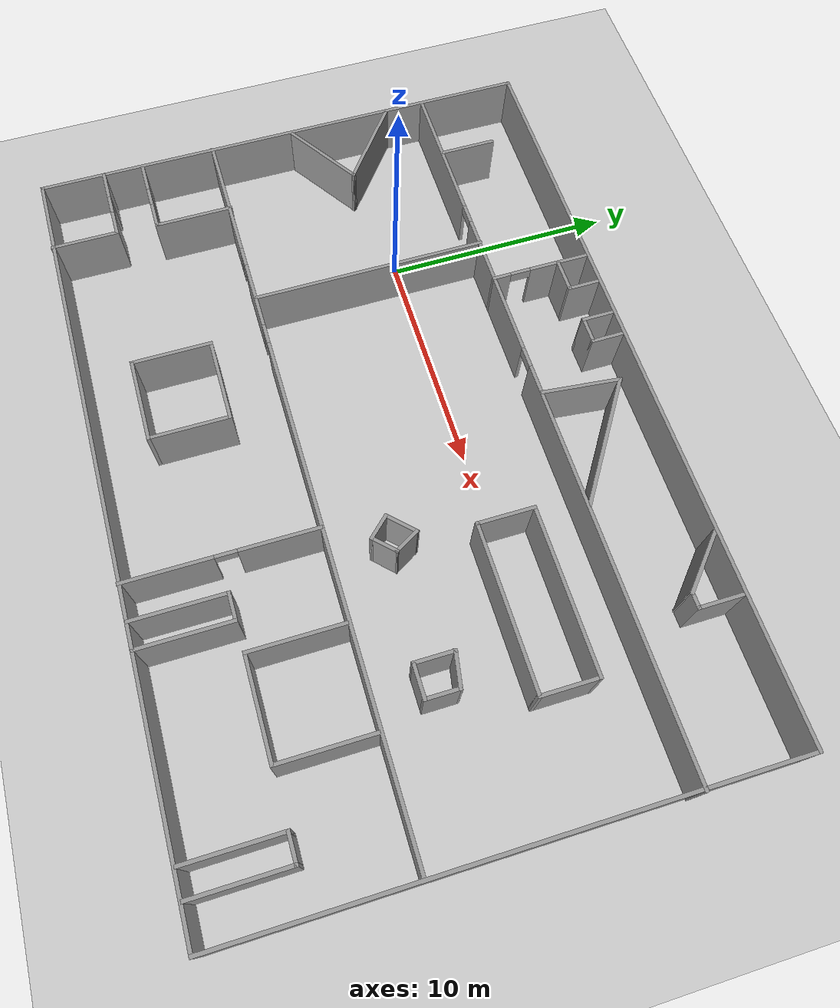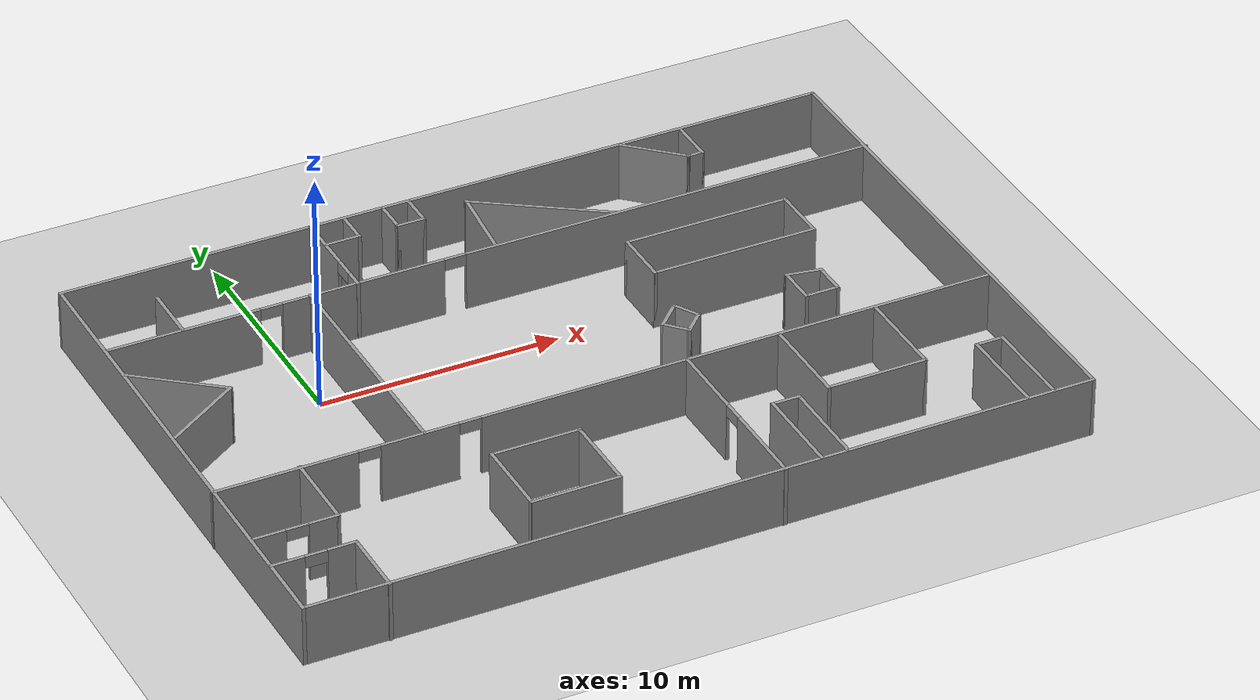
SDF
<sdf version="1.6">
 <world name="default">
  <light name="sun" type="directional">
   <pose>0 0 10 0 -0 0</pose>
   <diffuse>0.8 0.8 0.8 1</diffuse>
   <specular>0.1 0.1 0.1 1</specular>
   <attenuation>
    <range>1000</range>
    <constant>0.9</constant>
    <linear>0.01</linear>
    <quadratic>0.001</quadratic>
   </attenuation>
   <direction>-0.5 0.5 -1</direction>
  </light>
  <model name="ground_plane">
   <static>1</static>
   <link name="link">
    <collision name="collision">
     <geometry><plane><normal>0 0 1</normal><size>100 100</size></plane></geometry>
     <surface><friction><ode><mu>100</mu><mu2>50</mu2></ode></friction></surface>
    </collision>
    <visual name="visual">
     <cast_shadows>0</cast_shadows>
     <geometry><plane><normal>0 0 1</normal><size>100 100</size></plane></geometry>
     <material>
      <script><uri>file://media/materials/scripts/gazebo.material</uri><name>Gazebo/Grey</name></script>
     </material>
    </visual>
   </link>
  </model>
  <gravity>0 0 -9.8</gravity>
  <magnetic_field>6e-06 2.3e-05 -4.2e-05</magnetic_field>
  <atmosphere type="adiabatic"/>
  <physics name="default_physics" default="0" type="ode">
   <max_step_size>0.001</max_step_size>
   <real_time_factor>1</real_time_factor>
   <real_time_update_rate>1000</real_time_update_rate>
  </physics>
  <scene><ambient>0.4 0.4 0.4 1</ambient><background>0.7 0.7 0.7 1</background><shadows>1</shadows></scene>
  <spherical_coordinates>
   <surface_model>EARTH_WGS84</surface_model>
   <latitude_deg>0</latitude_deg>
   <longitude_deg>0</longitude_deg>
   <elevation>0</elevation>
   <heading_deg>0</heading_deg>
  </spherical_coordinates>
  <model name="Mapa_giros">
   <pose>8.95709 -3.38545 0 0 -0 0</pose>
   <link name="Wall_0">
    <collision name="Wall_0_Collision">
     <geometry><box><size>22.5 0.15 2.5</size></box></geometry>
     <pose>0 0 1.25 0 -0 0</pose>
    </collision>
    <visual name="Wall_0_Visual">
     <pose>0 0 1.25 0 -0 0</pose>
     <geometry><box><size>22.5 0.15 2.5</size></box></geometry>
     <material>
      <script><uri>file://media/materials/scripts/gazebo.material</uri><name>Gazebo/Grey</name></script>
      <ambient>1 1 1 1</ambient>
     </material>
    </visual>
    <pose>-16.1903 0.023577 0 0 0 -1.5708</pose>
   </link>
   <link name="Wall_1">
    <collision name="Wall_1_Collision">
     <geometry><box><size>32.5 0.15 2.5</size></box></geometry>
     <pose>0 0 1.25 0 -0 0</pose>
    </collision>
    <visual name="Wall_1_Visual">
     <pose>0 0 1.25 0 -0 0</pose>
     <geometry><box><size>32.5 0.15 2.5</size></box></geometry>
     <material>
      <script><uri>file://media/materials/scripts/gazebo.material</uri><name>Gazebo/Grey</name></script>
      <ambient>1 1 1 1</ambient>
     </material>
    </visual>
    <pose>-0.015296 -11.1514 0 0 -0 0</pose>
   </link>
   <link name="Wall_10">
    <collision name="Wall_10_Collision">
     <geometry><box><size>3.5 0.15 2.5</size></box></geometry>
     <pose>0 0 1.25 0 -0 0</pose>
    </collision>
    <visual name="Wall_10_Visual">
     <pose>0 0 1.25 0 -0 0</pose>
     <geometry><box><size>3.5 0.15 2.5</size></box></geometry>
     <material>
      <script><uri>file://media/materials/scripts/gazebo.material</uri><name>Gazebo/Grey</name></script>
      <ambient>1 1 1 1</ambient>
     </material>
    </visual>
    <pose>-12.7179 -4.89935 0 0 -0 1.5708</pose>
   </link>
   <link name="Wall_12">
    <pose>-14.4847 -8.34858 0 0 -0 0</pose>
    <visual name="Wall_12_Visual_0">
     <pose>-1.06568 0 1.25 0 -0 0</pose>
     <geometry><box><size>1.36864 0.15 2.5</size></box></geometry>
     <material>
      <script><uri>file://media/materials/scripts/gazebo.material</uri><name>Gazebo/Grey</name></script>
      <ambient>1 1 1 1</ambient>
     </material>
    </visual>
    <collision name="Wall_12_Collision_0">
     <geometry><box><size>1.36864 0.15 2.5</size></box></geometry>
     <pose>-1.06568 0 1.25 0 -0 0</pose>
    </collision>
    <visual name="Wall_12_Visual_1">
     <pose>1.13432 0 1.25 0 -0 0</pose>
     <geometry><box><size>1.23136 0.15 2.5</size></box></geometry>
     <material>
      <script><uri>file://media/materials/scripts/gazebo.material</uri><name>Gazebo/Grey</name></script>
      <ambient>1 1 1 1</ambient>
     </material>
    </visual>
    <collision name="Wall_12_Collision_1">
     <geometry><box><size>1.23136 0.15 2.5</size></box></geometry>
     <pose>1.13432 0 1.25 0 -0 0</pose>
    </collision>
    <visual name="Wall_12_Visual_2">
     <pose>0.068642 0 2.25 0 -0 0</pose>
     <geometry><box><size>0.9 0.15 0.5</size></box></geometry>
     <material>
      <script><uri>file://media/materials/scripts/gazebo.material</uri><name>Gazebo/Grey</name></script>
      <ambient>1 1 1 1</ambient>
     </material>
    </visual>
    <collision name="Wall_12_Collision_2">
     <geometry><box><size>0.9 0.15 0.5</size></box></geometry>
     <pose>0.068642 0 2.25 0 -0 0</pose>
    </collision>
   </link>
   <link name="Wall_13">
    <collision name="Wall_13_Collision">
     <geometry><box><size>3 0.15 2.5</size></box></geometry>
     <pose>0 0 1.25 0 -0 0</pose>
    </collision>
    <visual name="Wall_13_Visual">
     <pose>0 0 1.25 0 -0 0</pose>
     <geometry><box><size>3 0.15 2.5</size></box></geometry>
     <material>
      <script><uri>file://media/materials/scripts/gazebo.material</uri><name>Gazebo/Grey</name></script>
      <ambient>1 1 1 1</ambient>
     </material>
    </visual>
    <pose>-12.8097 -9.77358 0 0 0 -1.5708</pose>
   </link>
   <link name="Wall_15">
    <collision name="Wall_15_Collision">
     <geometry><box><size>3.75 0.15 2.5</size></box></geometry>
     <pose>0 0 1.25 0 -0 0</pose>
    </collision>
    <visual name="Wall_15_Visual">
     <pose>0 0 1.25 0 -0 0</pose>
     <geometry><box><size>3.75 0.15 2.5</size></box></geometry>
     <material>
      <script><uri>file://media/materials/scripts/gazebo.material</uri><name>Gazebo/Grey</name></script>
      <ambient>1 1 1 1</ambient>
     </material>
    </visual>
    <pose>-4.26493 -5.59546 0 0 -0 0</pose>
   </link>
   <link name="Wall_16">
    <collision name="Wall_16_Collision">
     <geometry><box><size>3.5 0.15 2.5</size></box></geometry>
     <pose>0 0 1.25 0 -0 0</pose>
    </collision>
    <visual name="Wall_16_Visual">
     <pose>0 0 1.25 0 -0 0</pose>
     <geometry><box><size>3.5 0.15 2.5</size></box></geometry>
     <material>
      <script><uri>file://media/materials/scripts/gazebo.material</uri><name>Gazebo/Grey</name></script>
      <ambient>1 1 1 1</ambient>
     </material>
    </visual>
    <pose>-2.46493 -7.27046 0 0 0 -1.5708</pose>
   </link>
   <link name="Wall_17">
    <collision name="Wall_17_Collision">
     <geometry><box><size>3.75 0.15 2.5</size></box></geometry>
     <pose>0 0 1.25 0 -0 0</pose>
    </collision>
    <visual name="Wall_17_Visual">
     <pose>0 0 1.25 0 -0 0</pose>
     <geometry><box><size>3.75 0.15 2.5</size></box></geometry>
     <material>
      <script><uri>file://media/materials/scripts/gazebo.material</uri><name>Gazebo/Grey</name></script>
      <ambient>1 1 1 1</ambient>
     </material>
    </visual>
    <pose>-4.26493 -8.94546 0 0 -0 3.14159</pose>
   </link>
   <link name="Wall_18">
    <collision name="Wall_18_Collision">
     <geometry><box><size>3.5 0.15 2.5</size></box></geometry>
     <pose>0 0 1.25 0 -0 0</pose>
    </collision>
    <visual name="Wall_18_Visual">
     <pose>0 0 1.25 0 -0 0</pose>
     <geometry><box><size>3.5 0.15 2.5</size></box></geometry>
     <material>
      <script><uri>file://media/materials/scripts/gazebo.material</uri><name>Gazebo/Grey</name></script>
      <ambient>1 1 1 1</ambient>
     </material>
    </visual>
    <pose>-6.06493 -7.27046 0 0 -0 1.5708</pose>
   </link>
   <link name="Wall_2">
    <collision name="Wall_2_Collision">
     <geometry><box><size>22.5 0.15 2.5</size></box></geometry>
     <pose>0 0 1.25 0 -0 0</pose>
    </collision>
    <visual name="Wall_2_Visual">
     <pose>0 0 1.25 0 -0 0</pose>
     <geometry><box><size>22.5 0.15 2.5</size></box></geometry>
     <material>
      <script><uri>file://media/materials/scripts/gazebo.material</uri><name>Gazebo/Grey</name></script>
      <ambient>1 1 1 1</ambient>
     </material>
    </visual>
    <pose>16.1597 0.023577 0 0 -0 1.5708</pose>
   </link>
   <link name="Wall_20">
    <pose>0.045885 6.85477 0 0 -0 0</pose>
    <visual name="Wall_20_Visual_0">
     <pose>-13.0573 0 1.25 0 -0 0</pose>
     <geometry><box><size>6.38544 0.15 2.5</size></box></geometry>
     <material>
      <script><uri>file://media/materials/scripts/gazebo.material</uri><name>Gazebo/Grey</name></script>
      <ambient>1 1 1 1</ambient>
     </material>
    </visual>
    <collision name="Wall_20_Collision_0">
     <geometry><box><size>6.38544 0.15 2.5</size></box></geometry>
     <pose>-13.0573 0 1.25 0 -0 0</pose>
    </collision>
    <visual name="Wall_20_Visual_1">
     <pose>-5.56019 0 1.25 0 -0 0</pose>
     <geometry><box><size>6.80874 0.15 2.5</size></box></geometry>
     <material>
      <script><uri>file://media/materials/scripts/gazebo.material</uri><name>Gazebo/Grey</name></script>
      <ambient>1 1 1 1</ambient>
     </material>
    </visual>
    <collision name="Wall_20_Collision_1">
     <geometry><box><size>6.80874 0.15 2.5</size></box></geometry>
     <pose>-5.56019 0 1.25 0 -0 0</pose>
    </collision>
    <visual name="Wall_20_Visual_2">
     <pose>7.49709 0 1.25 0 -0 0</pose>
     <geometry><box><size>17.5058 0.15 2.5</size></box></geometry>
     <material>
      <script><uri>file://media/materials/scripts/gazebo.material</uri><name>Gazebo/Grey</name></script>
      <ambient>1 1 1 1</ambient>
     </material>
    </visual>
    <collision name="Wall_20_Collision_2">
     <geometry><box><size>17.5058 0.15 2.5</size></box></geometry>
     <pose>7.49709 0 1.25 0 -0 0</pose>
    </collision>
    <visual name="Wall_20_Visual_3">
     <pose>-9.41456 0 2.25 0 -0 0</pose>
     <geometry><box><size>0.9 0.15 0.5</size></box></geometry>
     <material>
      <script><uri>file://media/materials/scripts/gazebo.material</uri><name>Gazebo/Grey</name></script>
      <ambient>1 1 1 1</ambient>
     </material>
    </visual>
    <collision name="Wall_20_Collision_3">
     <geometry><box><size>0.9 0.15 0.5</size></box></geometry>
     <pose>-9.41456 0 2.25 0 -0 0</pose>
    </collision>
    <visual name="Wall_20_Visual_4">
     <pose>-1.70582 0 2.25 0 -0 0</pose>
     <geometry><box><size>0.9 0.15 0.5</size></box></geometry>
     <material>
      <script><uri>file://media/materials/scripts/gazebo.material</uri><name>Gazebo/Grey</name></script>
      <ambient>1 1 1 1</ambient>
     </material>
    </visual>
    <collision name="Wall_20_Collision_4">
     <geometry><box><size>0.9 0.15 0.5</size></box></geometry>
     <pose>-1.70582 0 2.25 0 -0 0</pose>
    </collision>
   </link>
   <link name="Wall_22">
    <collision name="Wall_22_Collision">
     <geometry><box><size>4 0.15 2.5</size></box></geometry>
     <pose>0 0 1.25 0 -0 0</pose>
    </collision>
    <visual name="Wall_22_Visual">
     <pose>0 0 1.25 0 -0 0</pose>
     <geometry><box><size>4 0.15 2.5</size></box></geometry>
     <material>
      <script><uri>file://media/materials/scripts/gazebo.material</uri><name>Gazebo/Grey</name></script>
      <ambient>1 1 1 1</ambient>
     </material>
    </visual>
    <pose>4.70283 -9.20729 0 0 -0 1.5708</pose>
   </link>
   <link name="Wall_23">
    <collision name="Wall_23_Collision">
     <geometry><box><size>1.25 0.15 2.5</size></box></geometry>
     <pose>0 0 1.25 0 -0 0</pose>
    </collision>
    <visual name="Wall_23_Visual">
     <pose>0 0 1.25 0 -0 0</pose>
     <geometry><box><size>1.25 0.15 2.5</size></box></geometry>
     <material>
      <script><uri>file://media/materials/scripts/gazebo.material</uri><name>Gazebo/Grey</name></script>
      <ambient>1 1 1 1</ambient>
     </material>
    </visual>
    <pose>5.25283 -7.28229 0 0 -0 0</pose>
   </link>
   <link name="Wall_24">
    <collision name="Wall_24_Collision">
     <geometry><box><size>4 0.15 2.5</size></box></geometry>
     <pose>0 0 1.25 0 -0 0</pose>
    </collision>
    <visual name="Wall_24_Visual">
     <pose>0 0 1.25 0 -0 0</pose>
     <geometry><box><size>4 0.15 2.5</size></box></geometry>
     <material>
      <script><uri>file://media/materials/scripts/gazebo.material</uri><name>Gazebo/Grey</name></script>
      <ambient>1 1 1 1</ambient>
     </material>
    </visual>
    <pose>5.80283 -9.20729 0 0 0 -1.5708</pose>
   </link>
   <link name="Wall_26">
    <collision name="Wall_26_Collision">
     <geometry><box><size>4 0.15 2.5</size></box></geometry>
     <pose>0 0 1.25 0 -0 0</pose>
    </collision>
    <visual name="Wall_26_Visual">
     <pose>0 0 1.25 0 -0 0</pose>
     <geometry><box><size>4 0.15 2.5</size></box></geometry>
     <material>
      <script><uri>file://media/materials/scripts/gazebo.material</uri><name>Gazebo/Grey</name></script>
      <ambient>1 1 1 1</ambient>
     </material>
    </visual>
    <pose>7.05828 -5.31796 0 0 0 -1.5708</pose>
   </link>
   <link name="Wall_27">
    <collision name="Wall_27_Collision">
     <geometry><box><size>4.25 0.15 2.5</size></box></geometry>
     <pose>0 0 1.25 0 -0 0</pose>
    </collision>
    <visual name="Wall_27_Visual">
     <pose>0 0 1.25 0 -0 0</pose>
     <geometry><box><size>4.25 0.15 2.5</size></box></geometry>
     <material>
      <script><uri>file://media/materials/scripts/gazebo.material</uri><name>Gazebo/Grey</name></script>
      <ambient>1 1 1 1</ambient>
     </material>
    </visual>
    <pose>9.10828 -7.24296 0 0 -0 0</pose>
   </link>
   <link name="Wall_28">
    <collision name="Wall_28_Collision">
     <geometry><box><size>4 0.15 2.5</size></box></geometry>
     <pose>0 0 1.25 0 -0 0</pose>
    </collision>
    <visual name="Wall_28_Visual">
     <pose>0 0 1.25 0 -0 0</pose>
     <geometry><box><size>4 0.15 2.5</size></box></geometry>
     <material>
      <script><uri>file://media/materials/scripts/gazebo.material</uri><name>Gazebo/Grey</name></script>
      <ambient>1 1 1 1</ambient>
     </material>
    </visual>
    <pose>11.1583 -5.31796 0 0 -0 1.5708</pose>
   </link>
   <link name="Wall_3">
    <collision name="Wall_3_Collision">
     <geometry><box><size>32.5 0.15 2.5</size></box></geometry>
     <pose>0 0 1.25 0 -0 0</pose>
    </collision>
    <visual name="Wall_3_Visual">
     <pose>0 0 1.25 0 -0 0</pose>
     <geometry><box><size>32.5 0.15 2.5</size></box></geometry>
     <material>
      <script><uri>file://media/materials/scripts/gazebo.material</uri><name>Gazebo/Grey</name></script>
      <ambient>1 1 1 1</ambient>
     </material>
    </visual>
    <pose>-0.015296 11.1986 0 0 -0 3.14159</pose>
   </link>
   <link name="Wall_30">
    <collision name="Wall_30_Collision">
     <geometry><box><size>4 0.15 2.5</size></box></geometry>
     <pose>0 0 1.25 0 -0 0</pose>
    </collision>
    <visual name="Wall_30_Visual">
     <pose>0 0 1.25 0 -0 0</pose>
     <geometry><box><size>4 0.15 2.5</size></box></geometry>
     <material>
      <script><uri>file://media/materials/scripts/gazebo.material</uri><name>Gazebo/Grey</name></script>
      <ambient>1 1 1 1</ambient>
     </material>
    </visual>
    <pose>13.3905 -9.14611 0 0 -0 1.5708</pose>
   </link>
   <link name="Wall_31">
    <collision name="Wall_31_Collision">
     <geometry><box><size>1.25 0.15 2.5</size></box></geometry>
     <pose>0 0 1.25 0 -0 0</pose>
    </collision>
    <visual name="Wall_31_Visual">
     <pose>0 0 1.25 0 -0 0</pose>
     <geometry><box><size>1.25 0.15 2.5</size></box></geometry>
     <material>
      <script><uri>file://media/materials/scripts/gazebo.material</uri><name>Gazebo/Grey</name></script>
      <ambient>1 1 1 1</ambient>
     </material>
    </visual>
    <pose>13.9405 -7.22111 0 0 -0 0</pose>
   </link>
   <link name="Wall_32">
    <collision name="Wall_32_Collision">
     <geometry><box><size>4 0.15 2.5</size></box></geometry>
     <pose>0 0 1.25 0 -0 0</pose>
    </collision>
    <visual name="Wall_32_Visual">
     <pose>0 0 1.25 0 -0 0</pose>
     <geometry><box><size>4 0.15 2.5</size></box></geometry>
     <material>
      <script><uri>file://media/materials/scripts/gazebo.material</uri><name>Gazebo/Grey</name></script>
      <ambient>1 1 1 1</ambient>
     </material>
    </visual>
    <pose>14.4905 -9.14611 0 0 0 -1.5708</pose>
   </link>
   <link name="Wall_34">
    <collision name="Wall_34_Collision">
     <geometry><box><size>10.25 0.15 2.5</size></box></geometry>
     <pose>0 0 1.25 0 -0 0</pose>
    </collision>
    <visual name="Wall_34_Visual">
     <pose>0 0 1.25 0 -0 0</pose>
     <geometry><box><size>10.25 0.15 2.5</size></box></geometry>
     <material>
      <script><uri>file://media/materials/scripts/gazebo.material</uri><name>Gazebo/Grey</name></script>
      <ambient>1 1 1 1</ambient>
     </material>
    </visual>
    <pose>-7.7168 1.83536 0 0 0 -1.5708</pose>
   </link>
   <link name="Wall_36">
    <collision name="Wall_36_Collision">
     <geometry><box><size>3.88314 0.15 2.5</size></box></geometry>
     <pose>0 0 1.25 0 -0 0</pose>
    </collision>
    <visual name="Wall_36_Visual">
     <pose>0 0 1.25 0 -0 0</pose>
     <geometry><box><size>3.88314 0.15 2.5</size></box></geometry>
     <material>
      <script><uri>file://media/materials/scripts/gazebo.material</uri><name>Gazebo/Grey</name></script>
      <ambient>1 1 1 1</ambient>
     </material>
    </visual>
    <pose>-14.5078 1.54736 0 0 -0 0.581185</pose>
   </link>
   <link name="Wall_37">
    <collision name="Wall_37_Collision">
     <geometry><box><size>4.15837 0.15 2.5</size></box></geometry>
     <pose>0 0 1.25 0 -0 0</pose>
    </collision>
    <visual name="Wall_37_Visual">
     <pose>0 0 1.25 0 -0 0</pose>
     <geometry><box><size>4.15837 0.15 2.5</size></box></geometry>
     <material>
      <script><uri>file://media/materials/scripts/gazebo.material</uri><name>Gazebo/Grey</name></script>
      <ambient>1 1 1 1</ambient>
     </material>
    </visual>
    <pose>-14.5231 3.81104 0 0 -0 2.47519</pose>
   </link>
   <link name="Wall_39">
    <pose>-5.75903 9.02358 0 0 0 -1.5708</pose>
    <visual name="Wall_39_Visual_0">
     <pose>-0.862103 0 1.25 0 -0 0</pose>
     <geometry><box><size>2.77579 0.15 2.5</size></box></geometry>
     <material>
      <script><uri>file://media/materials/scripts/gazebo.material</uri><name>Gazebo/Grey</name></script>
      <ambient>1 1 1 1</ambient>
     </material>
    </visual>
    <collision name="Wall_39_Collision_0">
     <geometry><box><size>2.77579 0.15 2.5</size></box></geometry>
     <pose>-0.862103 0 1.25 0 -0 0</pose>
    </collision>
    <visual name="Wall_39_Visual_1">
     <pose>1.8379 0 1.25 0 -0 0</pose>
     <geometry><box><size>0.824206 0.15 2.5</size></box></geometry>
     <material>
      <script><uri>file://media/materials/scripts/gazebo.material</uri><name>Gazebo/Grey</name></script>
      <ambient>1 1 1 1</ambient>
     </material>
    </visual>
    <collision name="Wall_39_Collision_1">
     <geometry><box><size>0.824206 0.15 2.5</size></box></geometry>
     <pose>1.8379 0 1.25 0 -0 0</pose>
    </collision>
    <visual name="Wall_39_Visual_2">
     <pose>0.975794 0 2.25 0 -0 0</pose>
     <geometry><box><size>0.9 0.15 0.5</size></box></geometry>
     <material>
      <script><uri>file://media/materials/scripts/gazebo.material</uri><name>Gazebo/Grey</name></script>
      <ambient>1 1 1 1</ambient>
     </material>
    </visual>
    <collision name="Wall_39_Collision_2">
     <geometry><box><size>0.9 0.15 0.5</size></box></geometry>
     <pose>0.975794 0 2.25 0 -0 0</pose>
    </collision>
   </link>
   <link name="Wall_41">
    <collision name="Wall_41_Collision">
     <geometry><box><size>1.5 0.15 2.5</size></box></geometry>
     <pose>0 0 1.25 0 -0 0</pose>
    </collision>
    <visual name="Wall_41_Visual">
     <pose>0 0 1.25 0 -0 0</pose>
     <geometry><box><size>1.5 0.15 2.5</size></box></geometry>
     <material>
      <script><uri>file://media/materials/scripts/gazebo.material</uri><name>Gazebo/Grey</name></script>
      <ambient>1 1 1 1</ambient>
     </material>
    </visual>
    <pose>-5.02285 9.79143 0 0 -0 0</pose>
   </link>
   <link name="Wall_42">
    <collision name="Wall_42_Collision">
     <geometry><box><size>1.5 0.15 2.5</size></box></geometry>
     <pose>0 0 1.25 0 -0 0</pose>
    </collision>
    <visual name="Wall_42_Visual">
     <pose>0 0 1.25 0 -0 0</pose>
     <geometry><box><size>1.5 0.15 2.5</size></box></geometry>
     <material>
      <script><uri>file://media/materials/scripts/gazebo.material</uri><name>Gazebo/Grey</name></script>
      <ambient>1 1 1 1</ambient>
     </material>
    </visual>
    <pose>-4.34785 10.4664 0 0 -0 1.5708</pose>
   </link>
   <link name="Wall_44">
    <collision name="Wall_44_Collision">
     <geometry><box><size>1.5 0.15 2.5</size></box></geometry>
     <pose>0 0 1.25 0 -0 0</pose>
    </collision>
    <visual name="Wall_44_Visual">
     <pose>0 0 1.25 0 -0 0</pose>
     <geometry><box><size>1.5 0.15 2.5</size></box></geometry>
     <material>
      <script><uri>file://media/materials/scripts/gazebo.material</uri><name>Gazebo/Grey</name></script>
      <ambient>1 1 1 1</ambient>
     </material>
    </visual>
    <pose>-2.7 10.4624 0 0 0 -1.5708</pose>
   </link>
   <link name="Wall_45">
    <collision name="Wall_45_Collision">
     <geometry><box><size>1.25 0.15 2.5</size></box></geometry>
     <pose>0 0 1.25 0 -0 0</pose>
    </collision>
    <visual name="Wall_45_Visual">
     <pose>0 0 1.25 0 -0 0</pose>
     <geometry><box><size>1.25 0.15 2.5</size></box></geometry>
     <material>
      <script><uri>file://media/materials/scripts/gazebo.material</uri><name>Gazebo/Grey</name></script>
      <ambient>1 1 1 1</ambient>
     </material>
    </visual>
    <pose>-2.15001 9.7874 0 0 -0 0</pose>
   </link>
   <link name="Wall_46">
    <collision name="Wall_46_Collision">
     <geometry><box><size>1.5 0.15 2.5</size></box></geometry>
     <pose>0 0 1.25 0 -0 0</pose>
    </collision>
    <visual name="Wall_46_Visual">
     <pose>0 0 1.25 0 -0 0</pose>
     <geometry><box><size>1.5 0.15 2.5</size></box></geometry>
     <material>
      <script><uri>file://media/materials/scripts/gazebo.material</uri><name>Gazebo/Grey</name></script>
      <ambient>1 1 1 1</ambient>
     </material>
    </visual>
    <pose>-1.6 10.4624 0 0 -0 1.5708</pose>
   </link>
   <link name="Wall_48">
    <collision name="Wall_48_Collision">
     <geometry><box><size>2.89921 0.15 2.5</size></box></geometry>
     <pose>0 0 1.25 0 -0 0</pose>
    </collision>
    <visual name="Wall_48_Visual">
     <pose>0 0 1.25 0 -0 0</pose>
     <geometry><box><size>2.89921 0.15 2.5</size></box></geometry>
     <material>
      <script><uri>file://media/materials/scripts/gazebo.material</uri><name>Gazebo/Grey</name></script>
      <ambient>1 1 1 1</ambient>
     </material>
    </visual>
    <pose>8.61838 10.2044 0 0 0 -0.746048</pose>
   </link>
   <link name="Wall_49">
    <collision name="Wall_49_Collision">
     <geometry><box><size>0.75 0.15 2.5</size></box></geometry>
     <pose>0 0 1.25 0 -0 0</pose>
    </collision>
    <visual name="Wall_49_Visual">
     <pose>0 0 1.25 0 -0 0</pose>
     <geometry><box><size>0.75 0.15 2.5</size></box></geometry>
     <material>
      <script><uri>file://media/materials/scripts/gazebo.material</uri><name>Gazebo/Grey</name></script>
      <ambient>1 1 1 1</ambient>
     </material>
    </visual>
    <pose>9.92786 9.27139 0 0 -0 0</pose>
   </link>
   <link name="Wall_5">
    <pose>-0.045886 -3.2706 0 0 -0 0</pose>
    <visual name="Wall_5_Visual_0">
     <pose>-13.302 0 1.25 0 -0 0</pose>
     <geometry><box><size>5.896 0.15 2.5</size></box></geometry>
     <material>
      <script><uri>file://media/materials/scripts/gazebo.material</uri><name>Gazebo/Grey</name></script>
      <ambient>1 1 1 1</ambient>
     </material>
    </visual>
    <collision name="Wall_5_Collision_0">
     <geometry><box><size>5.896 0.15 2.5</size></box></geometry>
     <pose>-13.302 0 1.25 0 -0 0</pose>
    </collision>
    <visual name="Wall_5_Visual_1">
     <pose>-7.85446 0 1.25 0 -0 0</pose>
     <geometry><box><size>3.19909 0.15 2.5</size></box></geometry>
     <material>
      <script><uri>file://media/materials/scripts/gazebo.material</uri><name>Gazebo/Grey</name></script>
      <ambient>1 1 1 1</ambient>
     </material>
    </visual>
    <collision name="Wall_5_Collision_1">
     <geometry><box><size>3.19909 0.15 2.5</size></box></geometry>
     <pose>-7.85446 0 1.25 0 -0 0</pose>
    </collision>
    <visual name="Wall_5_Visual_2">
     <pose>5.44754 0 1.25 0 -0 0</pose>
     <geometry><box><size>21.6049 0.15 2.5</size></box></geometry>
     <material>
      <script><uri>file://media/materials/scripts/gazebo.material</uri><name>Gazebo/Grey</name></script>
      <ambient>1 1 1 1</ambient>
     </material>
    </visual>
    <collision name="Wall_5_Collision_2">
     <geometry><box><size>21.6049 0.15 2.5</size></box></geometry>
     <pose>5.44754 0 1.25 0 -0 0</pose>
    </collision>
    <visual name="Wall_5_Visual_3">
     <pose>-9.904 0 2.25 0 -0 0</pose>
     <geometry><box><size>0.9 0.15 0.5</size></box></geometry>
     <material>
      <script><uri>file://media/materials/scripts/gazebo.material</uri><name>Gazebo/Grey</name></script>
      <ambient>1 1 1 1</ambient>
     </material>
    </visual>
    <collision name="Wall_5_Collision_3">
     <geometry><box><size>0.9 0.15 0.5</size></box></geometry>
     <pose>-9.904 0 2.25 0 -0 0</pose>
    </collision>
    <visual name="Wall_5_Visual_4">
     <pose>-5.80491 0 2.25 0 -0 0</pose>
     <geometry><box><size>0.9 0.15 0.5</size></box></geometry>
     <material>
      <script><uri>file://media/materials/scripts/gazebo.material</uri><name>Gazebo/Grey</name></script>
      <ambient>1 1 1 1</ambient>
     </material>
    </visual>
    <collision name="Wall_5_Collision_4">
     <geometry><box><size>0.9 0.15 0.5</size></box></geometry>
     <pose>-5.80491 0 2.25 0 -0 0</pose>
    </collision>
   </link>
   <link name="Wall_50">
    <collision name="Wall_50_Collision">
     <geometry><box><size>2 0.15 2.5</size></box></geometry>
     <pose>0 0 1.25 0 -0 0</pose>
    </collision>
    <visual name="Wall_50_Visual">
     <pose>0 0 1.25 0 -0 0</pose>
     <geometry><box><size>2 0.15 2.5</size></box></geometry>
     <material>
      <script><uri>file://media/materials/scripts/gazebo.material</uri><name>Gazebo/Grey</name></script>
      <ambient>1 1 1 1</ambient>
     </material>
    </visual>
    <pose>10.2279 10.1964 0 0 -0 1.5708</pose>
   </link>
   <link name="Wall_52">
    <collision name="Wall_52_Collision">
     <geometry><box><size>3.44041 0.15 2.5</size></box></geometry>
     <pose>0 0 1.25 0 -0 0</pose>
    </collision>
    <visual name="Wall_52_Visual">
     <pose>0 0 1.25 0 -0 0</pose>
     <geometry><box><size>3.44041 0.15 2.5</size></box></geometry>
     <material>
      <script><uri>file://media/materials/scripts/gazebo.material</uri><name>Gazebo/Grey</name></script>
      <ambient>1 1 1 1</ambient>
     </material>
    </visual>
    <pose>0.251952 8.52193 0 0 -0 1.46835</pose>
   </link>
   <link name="Wall_53">
    <collision name="Wall_53_Collision">
     <geometry><box><size>5.97019 0.15 2.5</size></box></geometry>
     <pose>0 0 1.25 0 -0 0</pose>
    </collision>
    <visual name="Wall_53_Visual">
     <pose>0 0 1.25 0 -0 0</pose>
     <geometry><box><size>5.97019 0.15 2.5</size></box></geometry>
     <material>
      <script><uri>file://media/materials/scripts/gazebo.material</uri><name>Gazebo/Grey</name></script>
      <ambient>1 1 1 1</ambient>
     </material>
    </visual>
    <pose>2.83683 8.53723 0 0 0 -0.590918</pose>
   </link>
   <link name="Wall_55">
    <collision name="Wall_55_Collision">
     <geometry><box><size>2.5 0.15 2.5</size></box></geometry>
     <pose>0 0 1.25 0 -0 0</pose>
    </collision>
    <visual name="Wall_55_Visual">
     <pose>0 0 1.25 0 -0 0</pose>
     <geometry><box><size>2.5 0.15 2.5</size></box></geometry>
     <material>
      <script><uri>file://media/materials/scripts/gazebo.material</uri><name>Gazebo/Grey</name></script>
      <ambient>1 1 1 1</ambient>
     </material>
    </visual>
    <pose>-13.0089 8.09639 0 0 0 -1.5708</pose>
   </link>
   <link name="Wall_57">
    <collision name="Wall_57_Collision">
     <geometry><box><size>2.5 0.15 2.5</size></box></geometry>
     <pose>0 0 1.25 0 -0 0</pose>
    </collision>
    <visual name="Wall_57_Visual">
     <pose>0 0 1.25 0 -0 0</pose>
     <geometry><box><size>2.5 0.15 2.5</size></box></geometry>
     <material>
      <script><uri>file://media/materials/scripts/gazebo.material</uri><name>Gazebo/Grey</name></script>
      <ambient>1 1 1 1</ambient>
     </material>
    </visual>
    <pose>4.73342 3.66081 0 0 0 -1.5708</pose>
   </link>
   <link name="Wall_58">
    <collision name="Wall_58_Collision">
     <geometry><box><size>7 0.15 2.5</size></box></geometry>
     <pose>0 0 1.25 0 -0 0</pose>
    </collision>
    <visual name="Wall_58_Visual">
     <pose>0 0 1.25 0 -0 0</pose>
     <geometry><box><size>7 0.15 2.5</size></box></geometry>
     <material>
      <script><uri>file://media/materials/scripts/gazebo.material</uri><name>Gazebo/Grey</name></script>
      <ambient>1 1 1 1</ambient>
     </material>
    </visual>
    <pose>8.15842 2.48581 0 0 -0 0</pose>
   </link>
   <link name="Wall_59">
    <collision name="Wall_59_Collision">
     <geometry><box><size>2.5 0.15 2.5</size></box></geometry>
     <pose>0 0 1.25 0 -0 0</pose>
    </collision>
    <visual name="Wall_59_Visual">
     <pose>0 0 1.25 0 -0 0</pose>
     <geometry><box><size>2.5 0.15 2.5</size></box></geometry>
     <material>
      <script><uri>file://media/materials/scripts/gazebo.material</uri><name>Gazebo/Grey</name></script>
      <ambient>1 1 1 1</ambient>
     </material>
    </visual>
    <pose>11.5834 3.66081 0 0 -0 1.5708</pose>
   </link>
   <link name="Wall_60">
    <collision name="Wall_60_Collision">
     <geometry><box><size>7 0.15 2.5</size></box></geometry>
     <pose>0 0 1.25 0 -0 0</pose>
    </collision>
    <visual name="Wall_60_Visual">
     <pose>0 0 1.25 0 -0 0</pose>
     <geometry><box><size>7 0.15 2.5</size></box></geometry>
     <material>
      <script><uri>file://media/materials/scripts/gazebo.material</uri><name>Gazebo/Grey</name></script>
      <ambient>1 1 1 1</ambient>
     </material>
    </visual>
    <pose>8.15842 4.83581 0 0 -0 3.14159</pose>
   </link>
   <link name="Wall_62">
    <collision name="Wall_62_Collision">
     <geometry><box><size>1.75 0.15 2.5</size></box></geometry>
     <pose>0 0 1.25 0 -0 0</pose>
    </collision>
    <visual name="Wall_62_Visual">
     <pose>0 0 1.25 0 -0 0</pose>
     <geometry><box><size>1.75 0.15 2.5</size></box></geometry>
     <material>
      <script><uri>file://media/materials/scripts/gazebo.material</uri><name>Gazebo/Grey</name></script>
      <ambient>1 1 1 1</ambient>
     </material>
    </visual>
    <pose>9.169 -0.675085 0 0 0 -1.5708</pose>
   </link>
   <link name="Wall_63">
    <collision name="Wall_63_Collision">
     <geometry><box><size>1.5 0.15 2.5</size></box></geometry>
     <pose>0 0 1.25 0 -0 0</pose>
    </collision>
    <visual name="Wall_63_Visual">
     <pose>0 0 1.25 0 -0 0</pose>
     <geometry><box><size>1.5 0.15 2.5</size></box></geometry>
     <material>
      <script><uri>file://media/materials/scripts/gazebo.material</uri><name>Gazebo/Grey</name></script>
      <ambient>1 1 1 1</ambient>
     </material>
    </visual>
    <pose>9.844 -1.47508 0 0 -0 0</pose>
   </link>
   <link name="Wall_64">
    <collision name="Wall_64_Collision">
     <geometry><box><size>1.5 0.15 2.5</size></box></geometry>
     <pose>0 0 1.25 0 -0 0</pose>
    </collision>
    <visual name="Wall_64_Visual">
     <pose>0 0 1.25 0 -0 0</pose>
     <geometry><box><size>1.5 0.15 2.5</size></box></geometry>
     <material>
      <script><uri>file://media/materials/scripts/gazebo.material</uri><name>Gazebo/Grey</name></script>
      <ambient>1 1 1 1</ambient>
     </material>
    </visual>
    <pose>10.519 -0.800085 0 0 -0 1.5708</pose>
   </link>
   <link name="Wall_65">
    <collision name="Wall_65_Collision">
     <geometry><box><size>1.52295 0.15 2.5</size></box></geometry>
     <pose>0 0 1.25 0 -0 0</pose>
    </collision>
    <visual name="Wall_65_Visual">
     <pose>0 0 1.25 0 -0 0</pose>
     <geometry><box><size>1.52295 0.15 2.5</size></box></geometry>
     <material>
      <script><uri>file://media/materials/scripts/gazebo.material</uri><name>Gazebo/Grey</name></script>
      <ambient>1 1 1 1</ambient>
     </material>
    </visual>
    <pose>9.844 -8.5e-05 0 0 -0 2.95848</pose>
   </link>
   <link name="Wall_67">
    <collision name="Wall_67_Collision">
     <geometry><box><size>1.5 0.15 2.5</size></box></geometry>
     <pose>0 0 1.25 0 -0 0</pose>
    </collision>
    <visual name="Wall_67_Visual">
     <pose>0 0 1.25 0 -0 0</pose>
     <geometry><box><size>1.5 0.15 2.5</size></box></geometry>
     <material>
      <script><uri>file://media/materials/scripts/gazebo.material</uri><name>Gazebo/Grey</name></script>
      <ambient>1 1 1 1</ambient>
     </material>
    </visual>
    <pose>3.89534 -0.315495 0 0 -0 0.785398</pose>
   </link>
   <link name="Wall_68">
    <collision name="Wall_68_Collision">
     <geometry><box><size>1.25 0.15 2.5</size></box></geometry>
     <pose>0 0 1.25 0 -0 0</pose>
    </collision>
    <visual name="Wall_68_Visual">
     <pose>0 0 1.25 0 -0 0</pose>
     <geometry><box><size>1.25 0.15 2.5</size></box></geometry>
     <material>
      <script><uri>file://media/materials/scripts/gazebo.material</uri><name>Gazebo/Grey</name></script>
      <ambient>1 1 1 1</ambient>
     </material>
    </visual>
    <pose>4.64764 -0.314512 0 0 0 -1.0472</pose>
   </link>
   <link name="Wall_69">
    <collision name="Wall_69_Collision">
     <geometry><box><size>1.25 0.15 2.5</size></box></geometry>
     <pose>0 0 1.25 0 -0 0</pose>
    </collision>
    <visual name="Wall_69_Visual">
     <pose>0 0 1.25 0 -0 0</pose>
     <geometry><box><size>1.25 0.15 2.5</size></box></geometry>
     <material>
      <script><uri>file://media/materials/scripts/gazebo.material</uri><name>Gazebo/Grey</name></script>
      <ambient>1 1 1 1</ambient>
     </material>
    </visual>
    <pose>4.53373 -1.17973 0 0 0 -2.35619</pose>
   </link>
   <link name="Wall_7">
    <pose>3.17332 -7.25678 0 0 0 -1.5708</pose>
    <visual name="Wall_7_Visual_0">
     <pose>-2.3215 0 1.25 0 -0 0</pose>
     <geometry><box><size>3.35701 0.15 2.5</size></box></geometry>
     <material>
      <script><uri>file://media/materials/scripts/gazebo.material</uri><name>Gazebo/Grey</name></script>
      <ambient>1 1 1 1</ambient>
     </material>
    </visual>
    <collision name="Wall_7_Collision_0">
     <geometry><box><size>3.35701 0.15 2.5</size></box></geometry>
     <pose>-2.3215 0 1.25 0 -0 0</pose>
    </collision>
    <visual name="Wall_7_Visual_1">
     <pose>2.1285 0 1.25 0 -0 0</pose>
     <geometry><box><size>3.74299 0.15 2.5</size></box></geometry>
     <material>
      <script><uri>file://media/materials/scripts/gazebo.material</uri><name>Gazebo/Grey</name></script>
      <ambient>1 1 1 1</ambient>
     </material>
    </visual>
    <collision name="Wall_7_Collision_1">
     <geometry><box><size>3.74299 0.15 2.5</size></box></geometry>
     <pose>2.1285 0 1.25 0 -0 0</pose>
    </collision>
    <visual name="Wall_7_Visual_2">
     <pose>-0.192992 0 2.25 0 -0 0</pose>
     <geometry><box><size>0.9 0.15 0.5</size></box></geometry>
     <material>
      <script><uri>file://media/materials/scripts/gazebo.material</uri><name>Gazebo/Grey</name></script>
      <ambient>1 1 1 1</ambient>
     </material>
    </visual>
    <collision name="Wall_7_Collision_2">
     <geometry><box><size>0.9 0.15 0.5</size></box></geometry>
     <pose>-0.192992 0 2.25 0 -0 0</pose>
    </collision>
   </link>
   <link name="Wall_70">
    <collision name="Wall_70_Collision">
     <geometry><box><size>1.21308 0.15 2.5</size></box></geometry>
     <pose>0 0 1.25 0 -0 0</pose>
    </collision>
    <visual name="Wall_70_Visual">
     <pose>0 0 1.25 0 -0 0</pose>
     <geometry><box><size>1.21308 0.15 2.5</size></box></geometry>
     <material>
      <script><uri>file://media/materials/scripts/gazebo.material</uri><name>Gazebo/Grey</name></script>
      <ambient>1 1 1 1</ambient>
     </material>
    </visual>
    <pose>3.78143 -1.18072 0 0 -0 2.32355</pose>
   </link>
   <link name="Wall_9">
    <pose>-14.3929 -6.57435 0 0 -0 0</pose>
    <visual name="Wall_9_Visual_0">
     <pose>-1.08097 0 1.25 0 -0 0</pose>
     <geometry><box><size>1.33805 0.15 2.5</size></box></geometry>
     <material>
      <script><uri>file://media/materials/scripts/gazebo.material</uri><name>Gazebo/Grey</name></script>
      <ambient>1 1 1 1</ambient>
     </material>
    </visual>
    <collision name="Wall_9_Collision_0">
     <geometry><box><size>1.33805 0.15 2.5</size></box></geometry>
     <pose>-1.08097 0 1.25 0 -0 0</pose>
    </collision>
    <visual name="Wall_9_Visual_1">
     <pose>1.11903 0 1.25 0 -0 0</pose>
     <geometry><box><size>1.26195 0.15 2.5</size></box></geometry>
     <material>
      <script><uri>file://media/materials/scripts/gazebo.material</uri><name>Gazebo/Grey</name></script>
      <ambient>1 1 1 1</ambient>
     </material>
    </visual>
    <collision name="Wall_9_Collision_1">
     <geometry><box><size>1.26195 0.15 2.5</size></box></geometry>
     <pose>1.11903 0 1.25 0 -0 0</pose>
    </collision>
    <visual name="Wall_9_Visual_2">
     <pose>0.038054 0 2.25 0 -0 0</pose>
     <geometry><box><size>0.9 0.15 0.5</size></box></geometry>
     <material>
      <script><uri>file://media/materials/scripts/gazebo.material</uri><name>Gazebo/Grey</name></script>
      <ambient>1 1 1 1</ambient>
     </material>
    </visual>
    <collision name="Wall_9_Collision_2">
     <geometry><box><size>0.9 0.15 0.5</size></box></geometry>
     <pose>0.038054 0 2.25 0 -0 0</pose>
    </collision>
   </link>
   <static>1</static>
  </model>
 </world>
</sdf>
